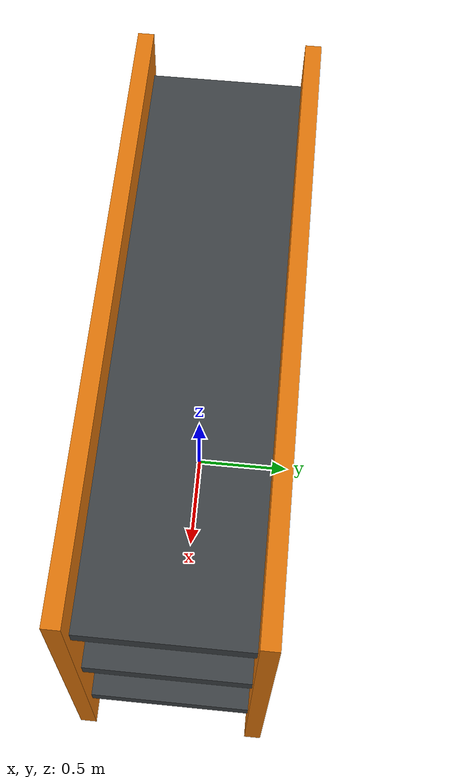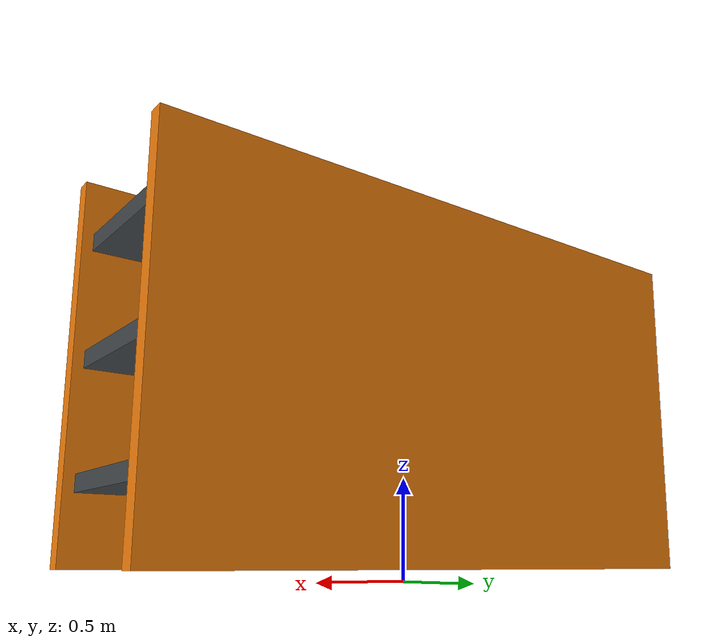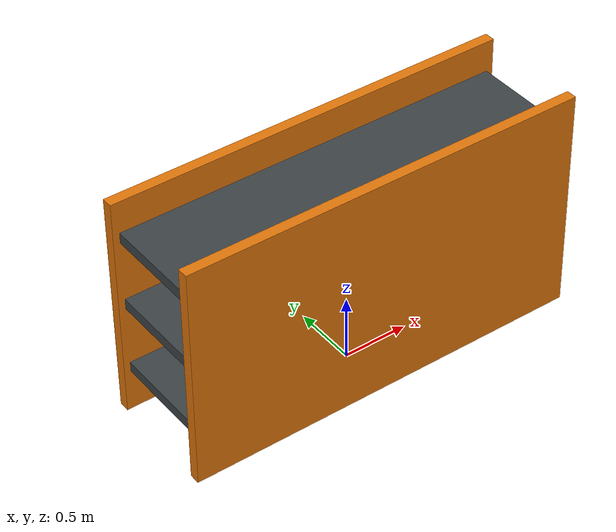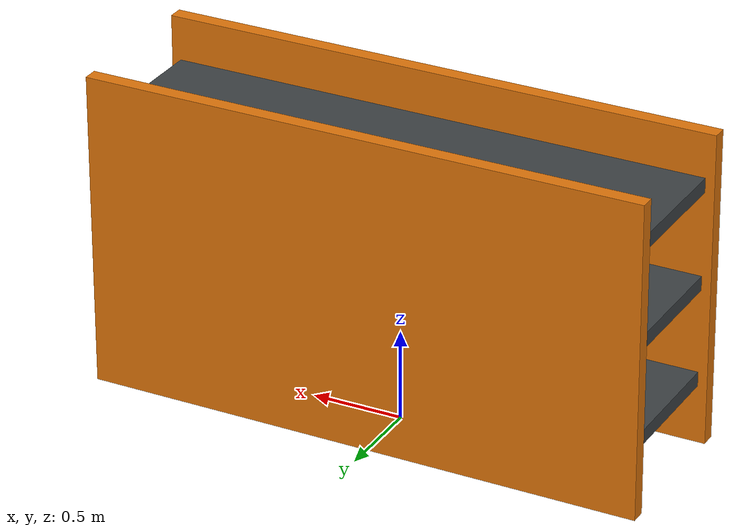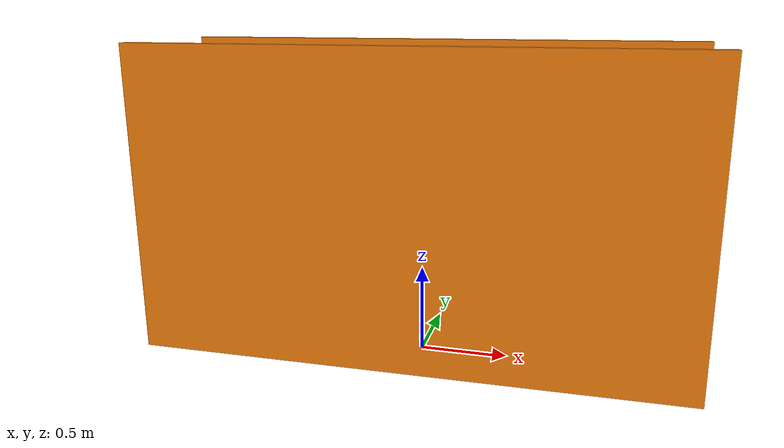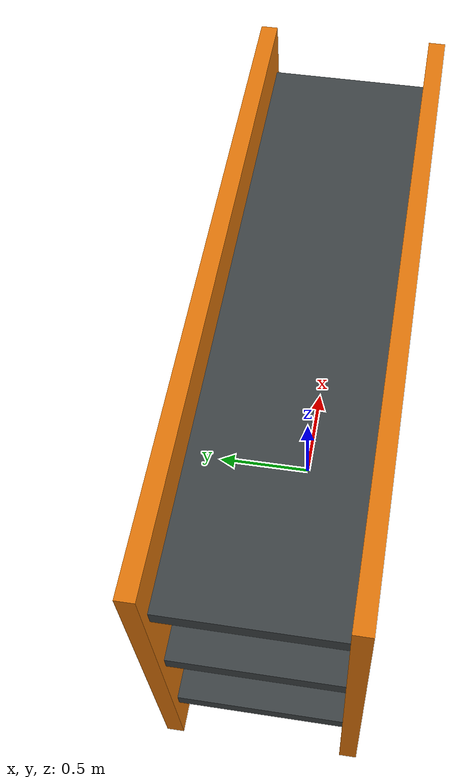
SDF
<?xml version="1.0"?>
<sdf version="1.6">
  <model name="demo_storage_rack">
    <static>true</static>
    <link name="rack">
      <collision name="rack_keepout_collision">
        <pose>0 0 0.90 0 0 0</pose>
        <geometry>
          <box>
            <size>3.00 0.85 1.80</size>
          </box>
        </geometry>
      </collision>

      <visual name="rear_beam">
        <pose>0 -0.42 0.92 0 0 0</pose>
        <geometry><box><size>3.05 0.08 1.72</size></box></geometry>
        <material><ambient>0.88 0.46 0.04 1</ambient><diffuse>0.88 0.46 0.04 1</diffuse><specular>0.08 0.06 0.02 1</specular></material>
      </visual>
      <visual name="front_beam">
        <pose>0 0.42 0.92 0 0 0</pose>
        <geometry><box><size>3.05 0.08 1.72</size></box></geometry>
        <material><ambient>0.88 0.46 0.04 1</ambient><diffuse>0.88 0.46 0.04 1</diffuse><specular>0.08 0.06 0.02 1</specular></material>
      </visual>
      <visual name="lower_deck">
        <pose>0 0 0.42 0 0 0</pose>
        <geometry><box><size>2.95 0.78 0.08</size></box></geometry>
        <material><ambient>0.18 0.20 0.21 1</ambient><diffuse>0.24 0.26 0.27 1</diffuse><specular>0.03 0.03 0.03 1</specular></material>
      </visual>
      <visual name="middle_deck">
        <pose>0 0 0.96 0 0 0</pose>
        <geometry><box><size>2.95 0.78 0.08</size></box></geometry>
        <material><ambient>0.18 0.20 0.21 1</ambient><diffuse>0.24 0.26 0.27 1</diffuse><specular>0.03 0.03 0.03 1</specular></material>
      </visual>
      <visual name="top_deck">
        <pose>0 0 1.50 0 0 0</pose>
        <geometry><box><size>2.95 0.78 0.08</size></box></geometry>
        <material><ambient>0.18 0.20 0.21 1</ambient><diffuse>0.24 0.26 0.27 1</diffuse><specular>0.03 0.03 0.03 1</specular></material>
      </visual>
      <visual name="left_cartons">
        <pose>-0.78 0 0.70 0 0 0</pose>
        <geometry><box><size>0.72 0.58 0.42</size></box></geometry>
        <material><ambient>0.55 0.34 0.13 1</ambient><diffuse>0.62 0.40 0.18 1</diffuse></material>
      </visual>
      <visual name="right_cartons">
        <pose>0.78 0 1.23 0 0 0</pose>
        <geometry><box><size>0.76 0.60 0.38</size></box></geometry>
        <material><ambient>0.50 0.31 0.12 1</ambient><diffuse>0.58 0.37 0.16 1</diffuse></material>
      </visual>
    </link>
  </model>
</sdf>
